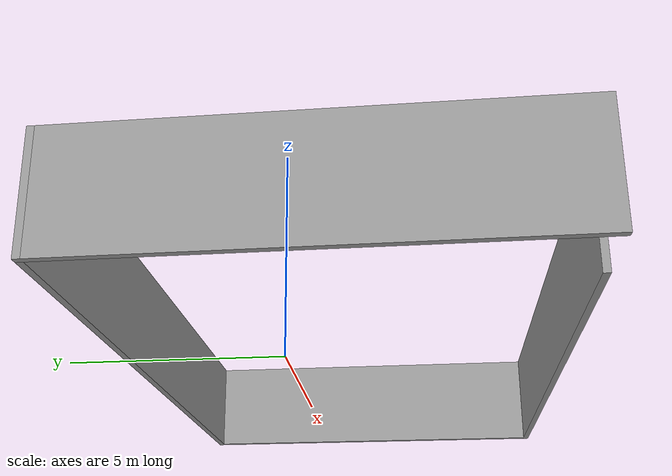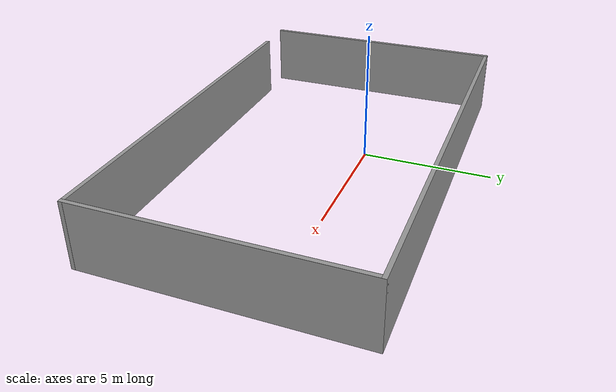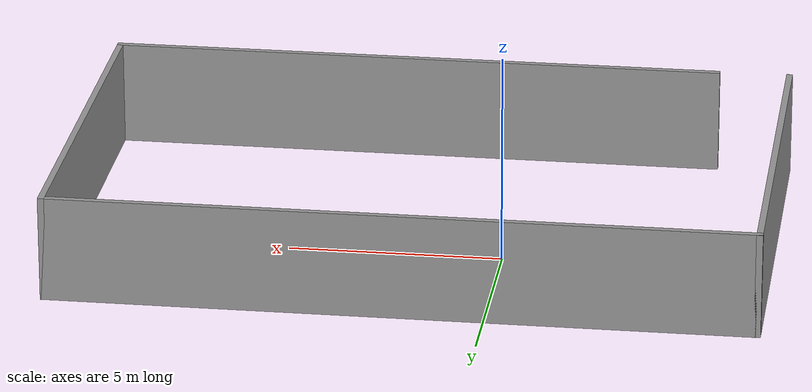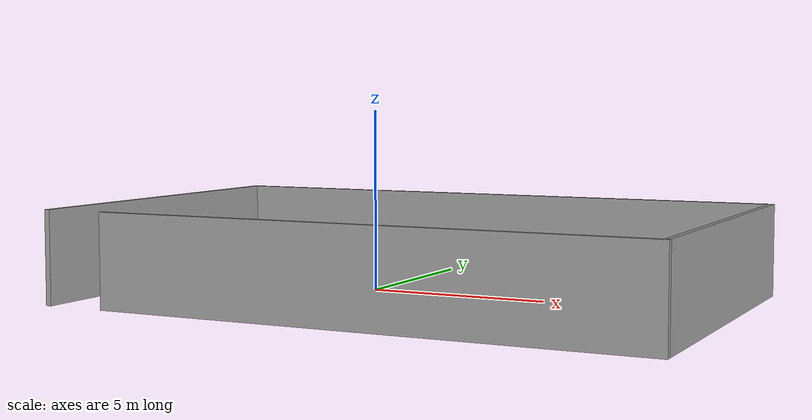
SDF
<?xml version='1.0'?>
<sdf version='1.6'>
  <model name='tsa_room'>
    <pose frame=''>1.95411 -1.32955 0 0 -0 0</pose>
    <link name='Wall_0'>
      <collision name='Wall_0_Collision'>
        <geometry>
          <box>
            <size>10 0.15 2.5</size>
          </box>
        </geometry>
        <pose frame=''>0 0 1.25 0 -0 0</pose>
      </collision>
      <visual name='Wall_0_Visual'>
        <pose frame=''>0 0 1.25 0 -0 0</pose>
        <geometry>
          <box>
            <size>10 0.15 2.5</size>
          </box>
        </geometry>
        <material>
          <script>
            <uri>file://media/materials/scripts/gazebo.material</uri>
            <name>Gazebo/Grey</name>
          </script>
          <ambient>1 1 1 1</ambient>
        </material>
        <meta>
          <layer>0</layer>
        </meta>
      </visual>
      <pose frame=''>-8.175 0 0 0 0 -1.5708</pose>
    </link>
    <link name='Wall_3'>
      <collision name='Wall_3_Collision'>
        <geometry>
          <box>
            <size>16.5 0.15 2.5</size>
          </box>
        </geometry>
        <pose frame=''>0 0 1.25 0 -0 0</pose>
      </collision>
      <visual name='Wall_3_Visual'>
        <pose frame=''>0 0 1.25 0 -0 0</pose>
        <geometry>
          <box>
            <size>16.5 0.15 2.5</size>
          </box>
        </geometry>
        <material>
          <script>
            <uri>file://media/materials/scripts/gazebo.material</uri>
            <name>Gazebo/Grey</name>
          </script>
          <ambient>1 1 1 1</ambient>
        </material>
        <meta>
          <layer>0</layer>
        </meta>
      </visual>
      <pose frame=''>0 4.925 0 0 -0 0</pose>
    </link>
    <link name='Wall_4'>
      <collision name='Wall_4_Collision'>
        <geometry>
          <box>
            <size>10 0.15 2.5</size>
          </box>
        </geometry>
        <pose frame=''>0 0 1.25 0 -0 0</pose>
      </collision>
      <visual name='Wall_4_Visual'>
        <pose frame=''>0 0 1.25 0 -0 0</pose>
        <geometry>
          <box>
            <size>10 0.15 2.5</size>
          </box>
        </geometry>
        <material>
          <script>
            <uri>file://media/materials/scripts/gazebo.material</uri>
            <name>Gazebo/Grey</name>
          </script>
          <ambient>1 1 1 1</ambient>
        </material>
        <meta>
          <layer>0</layer>
        </meta>
      </visual>
      <pose frame=''>8.175 0 0 0 0 -1.5708</pose>
    </link>
    <link name='Wall_5'>
      <collision name='Wall_5_Collision'>
        <geometry>
          <box>
            <size>14.75 0.15 2.5</size>
          </box>
        </geometry>
        <pose frame=''>0 0 1.25 0 -0 0</pose>
      </collision>
      <visual name='Wall_5_Visual'>
        <pose frame=''>0 0 1.25 0 -0 0</pose>
        <geometry>
          <box>
            <size>14.75 0.15 2.5</size>
          </box>
        </geometry>
        <material>
          <script>
            <uri>file://media/materials/scripts/gazebo.material</uri>
            <name>Gazebo/Grey</name>
          </script>
          <ambient>1 1 1 1</ambient>
        </material>
        <meta>
          <layer>0</layer>
        </meta>
      </visual>
      <pose frame=''>0.875 -4.925 0 0 -0 3.14159</pose>
    </link>
    <static>1</static>
  </model>
</sdf>
